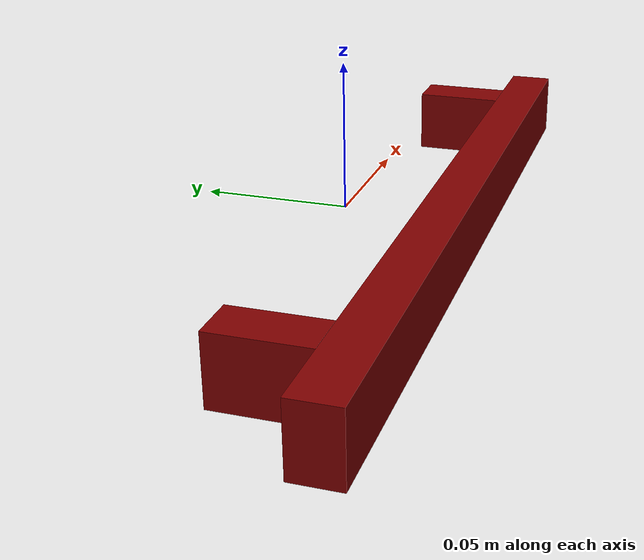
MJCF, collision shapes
<mujoco model="protruding_rectangular_handle">
    <compiler angle="radian"/>
    <asset>
        <mesh file="visuals/CabinetHandle003.obj" name="mesh"/>
        <texture file="visuals/T_CabinetHandle003_BC001.png" name="tex" type="2d"/>
        <material name="mat" rgba="1 1 1 1" texture="tex"/>
    </asset>
    <default>
        <default class="visual">
            <geom conaffinity="0" contype="0" group="1" type="mesh"/>
        </default>
        <default class="collision">
            <geom group="0" rgba="0.5 0 0 0.5"/>
        </default>
    </default>
    <worldbody>
        <body>
            <body name="object">
                <geom mesh="mesh" type="mesh" solimp="0.998 0.998 0.001" solref="0.001 1" density="100" friction="0.95 0.3 0.1" class="visual" material="mat"/>
                <geom class="collision" type="box" pos="-0.10672417283058167 -0.015464729629456997 0.0" size="0.007629015017300844 0.015396546572446823 0.011331900022923946" quat="1.0 0.0 0.0 0.0" name="handle_connector_top"/>
                <geom class="collision" type="box" pos="0.10671103000640869 -0.015464729629456997 0.0" size="0.007629015017300844 0.015396546572446823 0.011331900022923946" quat="1.0 0.0 0.0 0.0" name="handle_connector_bottom"/>
                <geom class="collision" type="box" pos="8.290261030197144e-05 -0.03854287788271904 0.0" size="0.007629017811268568 0.13741327822208405 0.011331900022923946" quat="0.7071067094802856 0.0 -0.0 -0.7071068286895752" name="handle"/>
            </body>
        </body>
    </worldbody>
    <actuator/>
</mujoco>
